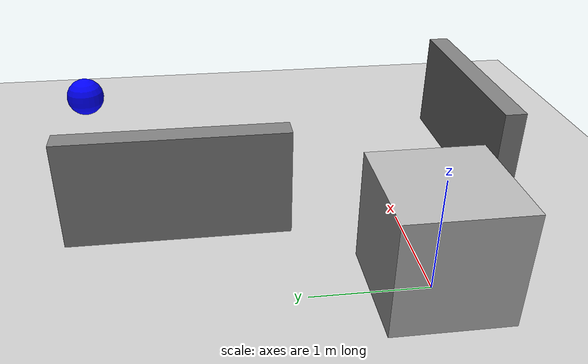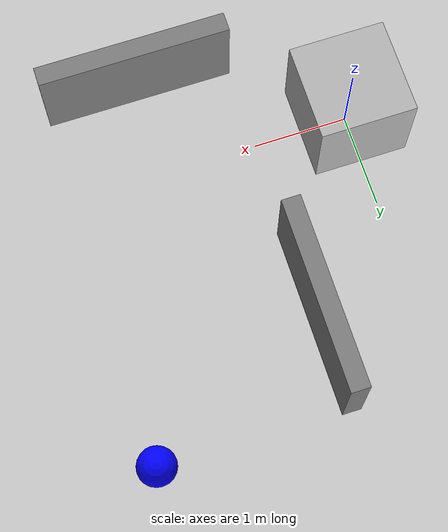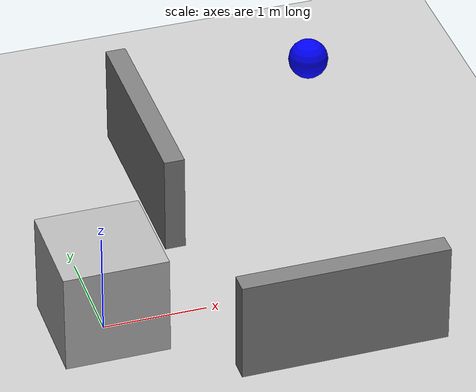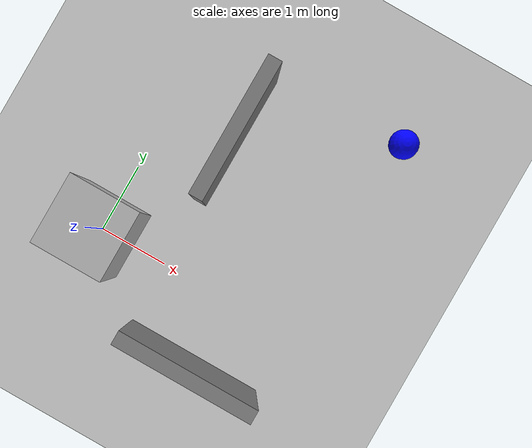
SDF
<?xml version="1.0" ?>
<sdf version="1.6">
  <world name="training_environment_world">
    <include>
      <uri>model://sun</uri>
    </include>
    <include>
      <uri>model://ground_plane</uri>
    </include>

    <model name="box_robot">
      <pose>0 0 0.5 0 0 0</pose>
      <link name="base_link">
        <inertial>
          <mass>1.0</mass>
          <inertia>
            <ixx>0.083</ixx>
            <iyy>0.083</iyy>
            <izz>0.083</izz>
            <ixy>0.0</ixy>
            <ixz>0.0</ixz>
            <iyz>0.0</iyz>
          </inertia>
        </inertial>
        <visual name="visual">
          <geometry>
            <box>
              <size>1 1 1</size>
            </box>
          </geometry>
        </visual>
        <collision name="collision">
          <geometry>
            <box>
              <size>1 1 1</size>
            </box>
          </geometry>
        </collision>
      </link>
    </model>

    <model name="target_sphere">
      <pose>3 3 0.5 0 0 0</pose>
      <link name="link">
        <visual name="visual">
          <geometry>
            <sphere>
              <radius>0.2</radius>
            </sphere>
          </geometry>
          <material>
            <ambient>0.0 0.0 1.0 1</ambient>
            <diffuse>0.0 0.0 1.0 1</diffuse>
            <specular>0.0 0.0 1.0 1</specular>
          </material>
        </visual>
        <collision name="collision">
          <geometry>
            <sphere>
              <radius>0.2</radius>
            </sphere>
          </geometry>
        </collision>
        <inertial>
          <mass>0.1</mass>
          <inertia>
            <ixx>0.0004</ixx>
            <iyy>0.0004</iyy>
            <izz>0.0004</izz>
            <ixy>0.0</ixy>
            <ixz>0.0</ixz>
            <iyz>0.0</iyz>
          </inertia>
        </inertial>
      </link>
    </model>

    <model name="obstacle_wall_1">
      <pose>1 2 0.5 0 0 0</pose>
      <link name="link">
        <visual name="visual">
          <geometry>
            <box>
              <size>0.2 2 1</size>
            </box>
          </geometry>
          <material>
            <ambient>0.5 0.5 0.5 1</ambient>
            <diffuse>0.5 0.5 0.5 1</diffuse>
            <specular>0.5 0.5 0.5 1</specular>
          </material>
        </visual>
        <collision name="collision">
          <geometry>
            <box>
              <size>0.2 2 1</size>
            </box>
          </geometry>
        </collision>
        <inertial>
          <mass>10.0</mass>
          <inertia>
            <ixx>1.666</ixx>
            <iyy>1.666</iyy>
            <izz>1.666</izz>
            <ixy>0.0</ixy>
            <ixz>0.0</ixz>
            <iyz>0.0</iyz>
          </inertia>
        </inertial>
      </link>
    </model>

    <model name="obstacle_wall_2">
      <pose>2 -1 0.5 0 0 0</pose>
      <link name="link">
        <visual name="visual">
          <geometry>
            <box>
              <size>2 0.2 1</size>
            </box>
          </geometry>
          <material>
            <ambient>0.5 0.5 0.5 1</ambient>
            <diffuse>0.5 0.5 0.5 1</diffuse>
            <specular>0.5 0.5 0.5 1</specular>
          </material>
        </visual>
        <collision name="collision">
          <geometry>
            <box>
              <size>2 0.2 1</size>
            </box>
          </geometry>
        </collision>
        <inertial>
          <mass>10.0</mass>
          <inertia>
            <ixx>1.666</ixx>
            <iyy>1.666</iyy>
            <izz>1.666</izz>
            <ixy>0.0</ixy>
            <ixz>0.0</ixz>
            <iyz>0.0</iyz>
          </inertia>
        </inertial>
      </link>
    </model>

  </world>
</sdf>
